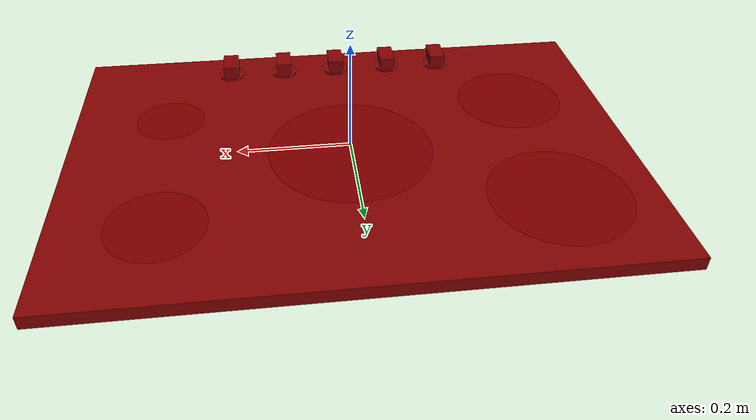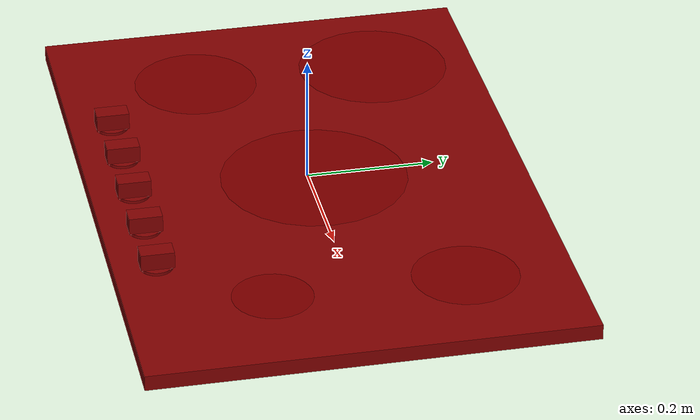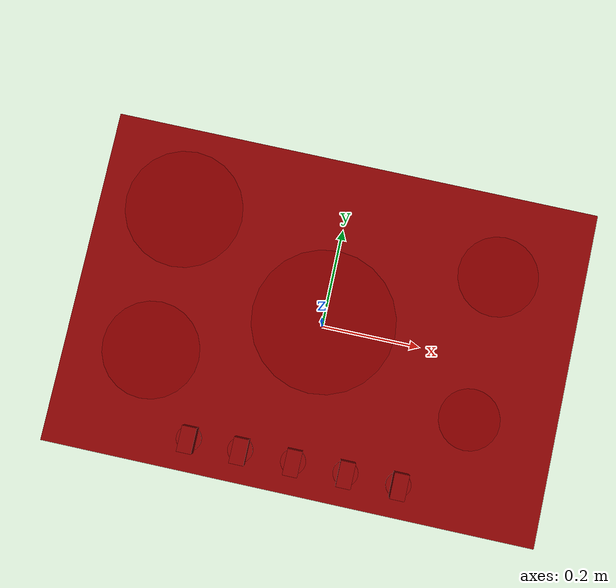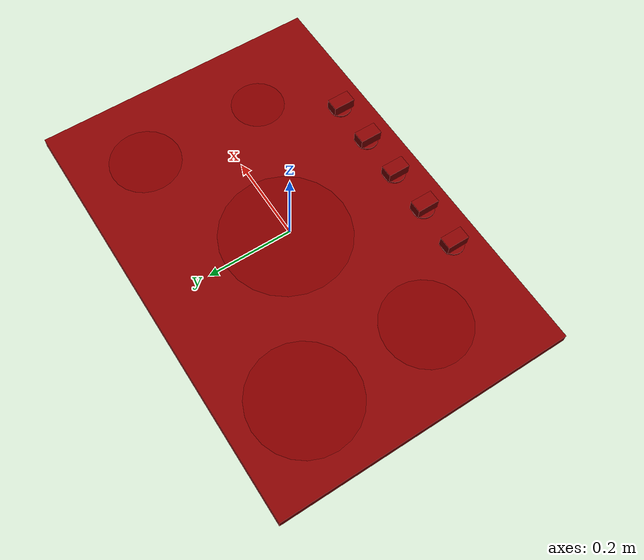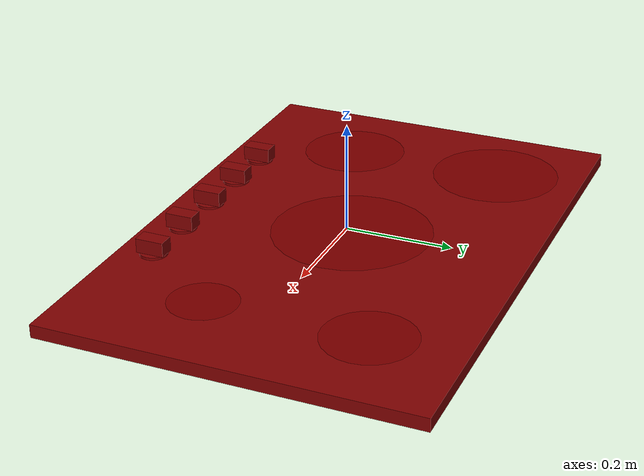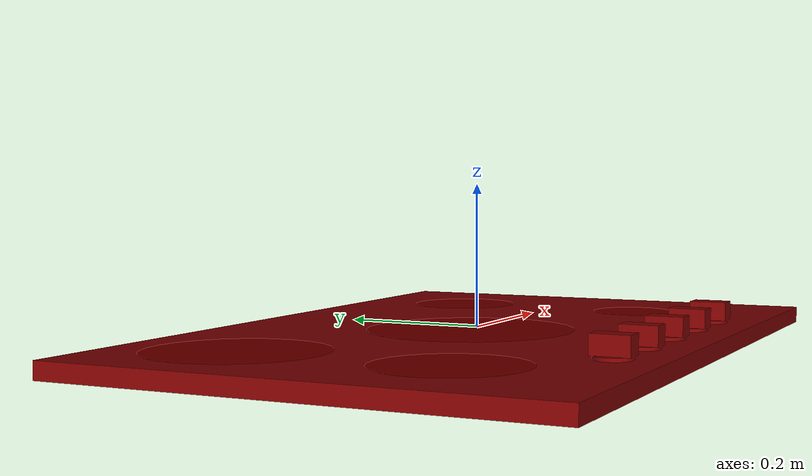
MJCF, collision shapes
<?xml version='1.0' encoding='UTF-8'?>
<mujoco model="model">
  <compiler angle="radian"/>
  <asset>
    <mesh file="visuals/knob_center.obj" name="knob_center_vis"/>
    <mesh file="visuals/knob_front_left.obj" name="knob_front_left_vis"/>
    <mesh file="visuals/knob_front_right.obj" name="knob_front_right_vis"/>
    <mesh file="visuals/knob_rear_left.obj" name="knob_rear_left_vis"/>
    <mesh file="visuals/knob_rear_right.obj" name="knob_rear_right_vis"/>
    <mesh file="visuals/Body001.obj" name="Body001_vis"/>
    <texture file="visuals/T_BC001.png" name="Body001_material" type="2d"/>
    <material name="Body001_material" rgba="1 1 1 1.0" texture="Body001_material" shininess="0.141421377658844" specular="0.3103448502657381"/>
    <texture file="visuals/T_BC001.png" name="knob_center_material" type="2d"/>
    <material name="knob_center_material" rgba="1 1 1 1.0" texture="knob_center_material" shininess="0.141421377658844" specular="0.3103448502657381"/>
    <texture file="visuals/T_BC001.png" name="knob_front_left_material" type="2d"/>
    <material name="knob_front_left_material" rgba="1 1 1 1.0" texture="knob_front_left_material" shininess="0.141421377658844" specular="0.3103448502657381"/>
    <texture file="visuals/T_BC001.png" name="knob_front_right_material" type="2d"/>
    <material name="knob_front_right_material" rgba="1 1 1 1.0" texture="knob_front_right_material" shininess="0.141421377658844" specular="0.3103448502657381"/>
    <texture file="visuals/T_BC001.png" name="knob_rear_left_material" type="2d"/>
    <material name="knob_rear_left_material" rgba="1 1 1 1.0" texture="knob_rear_left_material" shininess="0.141421377658844" specular="0.3103448502657381"/>
    <texture file="visuals/T_BC001.png" name="knob_rear_right_material" type="2d"/>
    <material name="knob_rear_right_material" rgba="1 1 1 1.0" texture="knob_rear_right_material" shininess="0.141421377658844" specular="0.3103448502657381"/>
  </asset>
  <default>
    <default class="visual">
      <geom conaffinity="0" contype="0" group="1" type="mesh"/>
    </default>
    <default class="collision">
      <geom group="0" rgba="0.5 0 0 0.5"/>
    </default>
    <default class="spawn">
      <geom group="0" rgba="1 1 1 0.5" contype="0" conaffinity="0"/>
      <site group="0" rgba="1 1 1 0.5"/>
    </default>
    <default class="region">
      <geom group="1" conaffinity="0" contype="0" rgba="0 1 0 0"/>
    </default>
  </default>
  <worldbody>
    <body>
      <body name="object">
        <site type="cylinder" rgba="0.5 0 0 0.5" size="0.12154461443424225 4.999999873689376e-05" pos="-0.329071968793869 0.17598247528076172 -0.003934890031814575" name="burner_on_rear_left"/>
        <site type="cylinder" rgba="0.5 0 0 0.5" size="0.09961447864770889 4.999999873689376e-05" pos="-0.3287195563316345 -0.12007641047239304 -0.003934890031814575" name="burner_on_front_left"/>
        <site type="cylinder" rgba="0.5 0 0 0.5" size="0.14796540141105652 4.999999873689376e-05" pos="0.0007528284331783652 0.010319823399186134 -0.003934890031814575" name="burner_on_center"/>
        <site type="cylinder" rgba="0.5 0 0 0.5" size="0.08277277648448944 4.999999873689376e-05" pos="0.32859426736831665 0.17622607946395874 -0.003934890031814575" name="burner_on_rear_right"/>
        <site type="cylinder" rgba="0.5 0 0 0.5" size="0.06251507997512817 4.999999873689376e-05" pos="0.3286627531051636 -0.1199866384267807 -0.003934890031814575" name="burner_on_front_right"/>
        <geom mesh="Body001_vis" type="mesh" solimp="0.998 0.998 0.001" solref="0.001 1" density="100" friction="0.95 0.3 0.1" class="visual" material="Body001_material"/>
        <geom class="collision" type="box" pos="0.00045677696471102536 4.103407263755798e-06 -0.016129208728671074" size="0.5035309791564941 0.3431375324726105 0.012199479155242443" quat="1.0 0.0 0.0 0.0"/>
        <body name="knob_center">
          <joint axis="0.0 0.0 1.0" pos="0.0007578452932648361 -0.2764698565006256 0.006885664537549019" limited="true" name="knob_center_joint" range="0.0 3.141592653589793" type="hinge" damping="0.05" armature="0.001"/>
          <geom mesh="knob_center_vis" type="mesh" solimp="0.998 0.998 0.001" solref="0.001 1" density="100" friction="0.95 0.3 0.1" class="visual" material="knob_center_material"/>
          <geom class="collision" type="box" pos="0.0006744212005287409 -0.27661871910095215 0.014908572658896446" size="0.014874361455440521 0.026102233678102493 0.013480888679623604" quat="1.0 0.0 0.0 0.0"/>
          <geom class="collision" type="cylinder" pos="0.0009648771956562996 -0.2764875590801239 -0.0005518938414752483" size="0.02549481950700283 0.002379579236730933" quat="1.0 0.0 0.0 0.0"/>
        </body>
        <body name="knob_front_left">
          <joint axis="0.0 0.0 1.0" pos="-0.21243718266487122 -0.2764698565006256 0.011849625036120415" limited="true" name="knob_front_left_joint" range="0.0 3.141592653589793" type="hinge" damping="0.05" armature="0.001"/>
          <geom mesh="knob_front_left_vis" type="mesh" solimp="0.998 0.998 0.001" solref="0.001 1" density="100" friction="0.95 0.3 0.1" class="visual" material="knob_front_left_material"/>
          <geom class="collision" type="box" pos="-0.2119937241077423 -0.27661871910095215 0.014908572658896446" size="0.014874360524117947 0.026102233678102493 0.013480888679623604" quat="1.0 0.0 0.0 0.0"/>
          <geom class="collision" type="cylinder" pos="-0.21255439519882202 -0.2764875590801239 -0.0005518938414752483" size="0.02549481950700283 0.002379579236730933" quat="1.0 0.0 0.0 0.0"/>
        </body>
        <body name="knob_front_right">
          <joint axis="0.0 0.0 1.0" pos="0.21546348929405212 -0.2764698565006256 0.011849625036120415" limited="true" name="knob_front_right_joint" range="0.0 3.141592653589793" type="hinge" damping="0.05" armature="0.001"/>
          <geom mesh="knob_front_right_vis" type="mesh" solimp="0.998 0.998 0.001" solref="0.001 1" density="100" friction="0.95 0.3 0.1" class="visual" material="knob_front_right_material"/>
          <geom class="collision" type="box" pos="0.21526867151260376 -0.27661871910095215 0.01510857418179512" size="0.014874360524117947 0.026102233678102493 0.01328088715672493" quat="1.0 0.0 0.0 0.0"/>
          <geom class="collision" type="cylinder" pos="0.21547925472259521 -0.2764875590801239 -0.0005518938414752483" size="0.02549481764435768 0.002379579236730933" quat="1.0 0.0 0.0 0.0"/>
        </body>
        <body name="knob_rear_left">
          <joint axis="0.0 0.0 1.0" pos="-0.1070111021399498 -0.2764698565006256 0.011849625036120415" limited="true" name="knob_rear_left_joint" range="0.0 3.141592653589793" type="hinge" damping="0.05" armature="0.001"/>
          <geom mesh="knob_rear_left_vis" type="mesh" solimp="0.998 0.998 0.001" solref="0.001 1" density="100" friction="0.95 0.3 0.1" class="visual" material="knob_rear_left_material"/>
          <geom class="collision" type="box" pos="-0.10674522817134857 -0.27661871910095215 0.014908572658896446" size="0.01487436331808567 0.026102233678102493 0.013480888679623604" quat="1.0 0.0 0.0 0.0"/>
          <geom class="collision" type="cylinder" pos="-0.10709507018327713 -0.2764875590801239 -0.0005518938414752483" size="0.02549481950700283 0.002379579236730933" quat="1.0 0.0 0.0 0.0"/>
        </body>
        <body name="knob_rear_right">
          <joint axis="0.0 0.0 1.0" pos="0.10765177011489868 -0.2764698565006256 0.011849625036120415" limited="true" name="knob_rear_right_joint" range="0.0 3.141592653589793" type="hinge" damping="0.05" armature="0.001"/>
          <geom mesh="knob_rear_right_vis" type="mesh" solimp="0.998 0.998 0.001" solref="0.001 1" density="100" friction="0.95 0.3 0.1" class="visual" material="knob_rear_right_material"/>
          <geom class="collision" type="box" pos="0.10764611512422562 -0.27661871910095215 0.014908572658896446" size="0.01487436331808567 0.026102233678102493 0.013480888679623604" quat="1.0 0.0 0.0 0.0"/>
          <geom class="collision" type="cylinder" pos="0.10777219384908676 -0.2764875590801239 -0.0005518938414752483" size="0.02549481764435768 0.002379579236730933" quat="1.0 0.0 0.0 0.0"/>
        </body>
        <geom class="region" name="reg_main" type="box" pos="0.0 0.0 -0.016224391758441925" size="0.5037387609481812 0.34314581751823425 0.0120613444596529"/>
      </body>
    </body>
  </worldbody>
  <actuator>
    <motor name="knob_center_joint_actuator" joint="knob_center_joint" gear="10"/>
    <motor name="knob_front_left_joint_actuator" joint="knob_front_left_joint" gear="10"/>
    <motor name="knob_front_right_joint_actuator" joint="knob_front_right_joint" gear="10"/>
    <motor name="knob_rear_left_joint_actuator" joint="knob_rear_left_joint" gear="10"/>
    <motor name="knob_rear_right_joint_actuator" joint="knob_rear_right_joint" gear="10"/>
  </actuator>
</mujoco>
